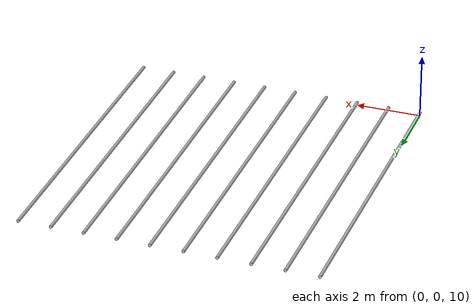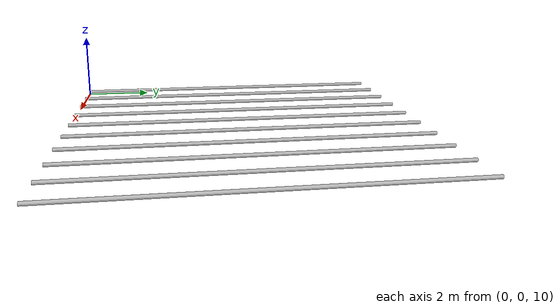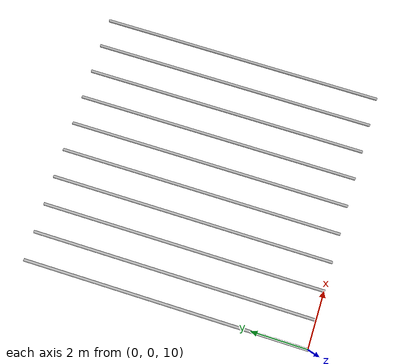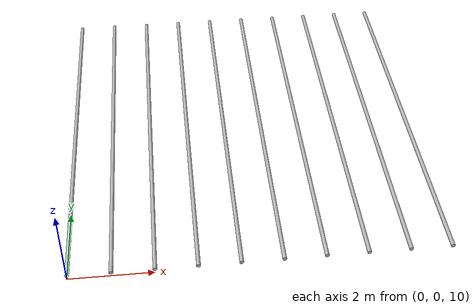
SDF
<?xml version="1.0" ?>
<sdf version="1.3">
    <world name="default">
        <gui>
            <camera name="user_camera">
                <pose>-60 0 5 0 0 0</pose>
            </camera>
        </gui>
        <scene>
            <ambient>0.5 0.5 0.5 1</ambient>
            <background>0.5 0.5 0.5 1</background>
            <shadows>false</shadows>
        </scene>
        <include>
            <uri>model://sun</uri>
        </include>
        <physics type="ode">
            <gravity>0.0 0.0 -9.81</gravity>
            <ode>
                <solver>
                    <type>quick</type>
                    <dt>0.001</dt>
                    <iters>100</iters>
                    <sor>1.0</sor>
                </solver>
                <constraints>
                    <cfm>0</cfm>
                    <erp>1.0</erp>
                    <contact_max_correcting_vel>0.0</contact_max_correcting_vel>
                    <contact_surface_layer>0.0</contact_surface_layer>
                </constraints>
            </ode>
        </physics>
        <model name="model_1_mass_1_damping_10000">
            <pose>0.0 0.0 10.1 1.57079633 0.0 0.0</pose>
            <link name="link_1">
                <pose>0.0 0.0 0.0 0.0 0.0 0.0</pose>
                <inertial>
                    <pose>0.0 0.0 -10.0 0.0 0.0 0.0</pose>
                    <inertia>
                        <ixx>0.0</ixx>
                        <ixy>0.0</ixy>
                        <ixz>0.0</ixz>
                        <iyy>0.0</iyy>
                        <iyz>0.0</iyz>
                        <izz>0.0</izz>
                    </inertia>
                    <mass>1.0</mass>
                </inertial>
                <velocity_decay>
                    <linear>0.0</linear>
                    <angular>0.0</angular>
                </velocity_decay>
                <visual name="visual_cylinder">
                    <pose>0.0 0.0 -5.0 0.0 0.0 0.0</pose>
                    <geometry>
                        <cylinder>
                            <radius>0.05</radius>
                            <length>10.0</length>
                        </cylinder>
                    </geometry>
                    <material>
                        <script>Gazebo/Green</script>
                    </material>
                </visual>
                <collision name="collision_cylinder">
                    <pose>0.0 0.0 -5.0 0.0 0.0 0.0</pose>
                    <max_contacts>250</max_contacts>
                    <geometry>
                        <cylinder>
                            <radius>0.05</radius>
                            <length>10.0</length>
                        </cylinder>
                    </geometry>
                </collision>
                <gravity>true</gravity>
                <self_collide>true</self_collide>
                <kinematic>false</kinematic>
            </link>
            <joint name="joint_0" type="revolute">
                <parent>world</parent>
                <child>link_1</child>
                <pose>0.0 0.0 0.0 0.0 0.0 0.0</pose>
                <axis>
                    <xyz>1.0 0.0 0.0</xyz>
                    <dynamics>
                        <damping>10000.0</damping>
                        <friction>0.0</friction>
                    </dynamics>
                </axis>
            </joint>
            <static>false</static>
        </model>
        <model name="model_2_mass_01_damping_10">
            <pose>1.0 0.0 10.1 1.57079633 0.0 0.0</pose>
            <link name="link_1">
                <pose>0.0 0.0 0.0 0.0 0.0 0.0</pose>
                <inertial>
                    <pose>0.0 0.0 -10.0 0.0 0.0 0.0</pose>
                    <inertia>
                        <ixx>0.0</ixx>
                        <ixy>0.0</ixy>
                        <ixz>0.0</ixz>
                        <iyy>0.0</iyy>
                        <iyz>0.0</iyz>
                        <izz>0.0</izz>
                    </inertia>
                    <mass>0.1</mass>
                </inertial>
                <velocity_decay>
                    <linear>0.0</linear>
                    <angular>0.0</angular>
                </velocity_decay>
                <visual name="visual_cylinder">
                    <pose>0.0 0.0 -5.0 0.0 0.0 0.0</pose>
                    <geometry>
                        <cylinder>
                            <radius>0.05</radius>
                            <length>10.0</length>
                        </cylinder>
                    </geometry>
                    <material>
                        <script>Gazebo/Green</script>
                    </material>
                </visual>
                <collision name="collision_cylinder">
                    <pose>0.0 0.0 -5.0 0.0 0.0 0.0</pose>
                    <max_contacts>250</max_contacts>
                    <geometry>
                        <cylinder>
                            <radius>0.05</radius>
                            <length>10.0</length>
                        </cylinder>
                    </geometry>
                </collision>
                <gravity>true</gravity>
                <self_collide>true</self_collide>
                <kinematic>false</kinematic>
            </link>
            <joint name="joint_0" type="revolute">
                <parent>world</parent>
                <child>link_1</child>
                <pose>0.0 0.0 0.0 0.0 0.0 0.0</pose>
                <axis>
                    <xyz>1.0 0.0 0.0</xyz>
                    <dynamics>
                        <damping>10.0</damping>
                        <friction>0.0</friction>
                    </dynamics>
                </axis>
            </joint>
            <static>false</static>
        </model>
        <model name="model_3_mass_1_damping_10">
            <pose>2.0 0.0 10.1 1.57079633 0.0 0.0</pose>
            <link name="link_1">
                <pose>0.0 0.0 0.0 0.0 0.0 0.0</pose>
                <inertial>
                    <pose>0.0 0.0 -10.0 0.0 0.0 0.0</pose>
                    <inertia>
                        <ixx>0.0</ixx>
                        <ixy>0.0</ixy>
                        <ixz>0.0</ixz>
                        <iyy>0.0</iyy>
                        <iyz>0.0</iyz>
                        <izz>0.0</izz>
                    </inertia>
                    <mass>1.0</mass>
                </inertial>
                <velocity_decay>
                    <linear>0.0</linear>
                    <angular>0.0</angular>
                </velocity_decay>
                <visual name="visual_cylinder">
                    <pose>0.0 0.0 -5.0 0.0 0.0 0.0</pose>
                    <geometry>
                        <cylinder>
                            <radius>0.05</radius>
                            <length>10.0</length>
                        </cylinder>
                    </geometry>
                    <material>
                        <script>Gazebo/Green</script>
                    </material>
                </visual>
                <collision name="collision_cylinder">
                    <pose>0.0 0.0 -5.0 0.0 0.0 0.0</pose>
                    <max_contacts>250</max_contacts>
                    <geometry>
                        <cylinder>
                            <radius>0.05</radius>
                            <length>10.0</length>
                        </cylinder>
                    </geometry>
                </collision>
                <gravity>true</gravity>
                <self_collide>true</self_collide>
                <kinematic>false</kinematic>
            </link>
            <joint name="joint_0" type="revolute">
                <parent>world</parent>
                <child>link_1</child>
                <pose>0.0 0.0 0.0 0.0 0.0 0.0</pose>
                <axis>
                    <xyz>1.0 0.0 0.0</xyz>
                    <dynamics>
                        <damping>10.0</damping>
                        <friction>0.0</friction>
                    </dynamics>
                </axis>
            </joint>
            <static>false</static>
        </model>
        <model name="model_4_mass_1_ixx_1_damping_10">
            <pose>3.0 0.0 10.1 1.57079633 0.0 0.0</pose>
            <link name="link_1">
                <pose>0.0 0.0 0.0 0.0 0.0 0.0</pose>
                <inertial>
                    <pose>0.0 0.0 -10.0 0.0 0.0 0.0</pose>
                    <inertia>
                        <ixx>1.0</ixx>
                        <ixy>0.0</ixy>
                        <ixz>0.0</ixz>
                        <iyy>0.0</iyy>
                        <iyz>0.0</iyz>
                        <izz>0.0</izz>
                    </inertia>
                    <mass>1.0</mass>
                </inertial>
                <velocity_decay>
                    <linear>0.0</linear>
                    <angular>0.0</angular>
                </velocity_decay>
                <visual name="visual_cylinder">
                    <pose>0.0 0.0 -5.0 0.0 0.0 0.0</pose>
                    <geometry>
                        <cylinder>
                            <radius>0.05</radius>
                            <length>10.0</length>
                        </cylinder>
                    </geometry>
                    <material>
                        <script>Gazebo/Green</script>
                    </material>
                </visual>
                <collision name="collision_cylinder">
                    <pose>0.0 0.0 -5.0 0.0 0.0 0.0</pose>
                    <max_contacts>250</max_contacts>
                    <geometry>
                        <cylinder>
                            <radius>0.05</radius>
                            <length>10.0</length>
                        </cylinder>
                    </geometry>
                </collision>
                <gravity>true</gravity>
                <self_collide>true</self_collide>
                <kinematic>false</kinematic>
            </link>
            <joint name="joint_0" type="revolute">
                <parent>world</parent>
                <child>link_1</child>
                <pose>0.0 0.0 0.0 0.0 0.0 0.0</pose>
                <axis>
                    <xyz>1.0 0.0 0.0</xyz>
                    <dynamics>
                        <damping>10.0</damping>
                        <friction>0.0</friction>
                    </dynamics>
                </axis>
            </joint>
            <static>false</static>
        </model>
        <model name="model_5_mass_1_damping_1">
            <pose>4.0 0.0 10.1 1.57079633 0.0 0.0</pose>
            <link name="link_1">
                <pose>0.0 0.0 0.0 0.0 0.0 0.0</pose>
                <inertial>
                    <pose>0.0 0.0 -10.0 0.0 0.0 0.0</pose>
                    <inertia>
                        <ixx>0.0</ixx>
                        <ixy>0.0</ixy>
                        <ixz>0.0</ixz>
                        <iyy>0.0</iyy>
                        <iyz>0.0</iyz>
                        <izz>0.0</izz>
                    </inertia>
                    <mass>1.0</mass>
                </inertial>
                <velocity_decay>
                    <linear>0.0</linear>
                    <angular>0.0</angular>
                </velocity_decay>
                <visual name="visual_cylinder">
                    <pose>0.0 0.0 -5.0 0.0 0.0 0.0</pose>
                    <geometry>
                        <cylinder>
                            <radius>0.05</radius>
                            <length>10.0</length>
                        </cylinder>
                    </geometry>
                    <material>
                        <script>Gazebo/Green</script>
                    </material>
                </visual>
                <collision name="collision_cylinder">
                    <pose>0.0 0.0 -5.0 0.0 0.0 0.0</pose>
                    <max_contacts>250</max_contacts>
                    <geometry>
                        <cylinder>
                            <radius>0.05</radius>
                            <length>10.0</length>
                        </cylinder>
                    </geometry>
                </collision>
                <gravity>true</gravity>
                <self_collide>true</self_collide>
                <kinematic>false</kinematic>
            </link>
            <joint name="joint_0" type="revolute">
                <parent>world</parent>
                <child>link_1</child>
                <pose>0.0 0.0 0.0 0.0 0.0 0.0</pose>
                <axis>
                    <xyz>1.0 0.0 0.0</xyz>
                    <dynamics>
                        <damping>1.0</damping>
                        <friction>0.0</friction>
                    </dynamics>
                </axis>
            </joint>
            <static>false</static>
        </model>
        <model name="model_6_mass_1_damping_10">
            <pose>5.0 0.0 10.1 1.57079633 0.0 0.0</pose>
            <link name="link_1">
                <pose>0.0 0.0 0.0 0.0 0.0 0.0</pose>
                <inertial>
                    <pose>0.0 0.0 -10.0 0.0 0.0 0.0</pose>
                    <inertia>
                        <ixx>0.0</ixx>
                        <ixy>0.0</ixy>
                        <ixz>0.0</ixz>
                        <iyy>0.0</iyy>
                        <iyz>0.0</iyz>
                        <izz>0.0</izz>
                    </inertia>
                    <mass>1.0</mass>
                </inertial>
                <velocity_decay>
                    <linear>0.0</linear>
                    <angular>0.0</angular>
                </velocity_decay>
                <visual name="visual_cylinder">
                    <pose>0.0 0.0 -5.0 0.0 0.0 0.0</pose>
                    <geometry>
                        <cylinder>
                            <radius>0.05</radius>
                            <length>10.0</length>
                        </cylinder>
                    </geometry>
                    <material>
                        <script>Gazebo/Green</script>
                    </material>
                </visual>
                <collision name="collision_cylinder">
                    <pose>0.0 0.0 -5.0 0.0 0.0 0.0</pose>
                    <max_contacts>250</max_contacts>
                    <geometry>
                        <cylinder>
                            <radius>0.05</radius>
                            <length>10.0</length>
                        </cylinder>
                    </geometry>
                </collision>
                <gravity>true</gravity>
                <self_collide>true</self_collide>
                <kinematic>false</kinematic>
            </link>
            <joint name="joint_0" type="revolute">
                <parent>world</parent>
                <child>link_1</child>
                <pose>0.0 0.0 0.0 0.0 0.0 0.0</pose>
                <axis>
                    <xyz>1.0 0.0 0.0</xyz>
                    <dynamics>
                        <damping>10.0</damping>
                        <friction>0.0</friction>
                    </dynamics>
                </axis>
            </joint>
            <static>false</static>
        </model>
        <model name="model_7_mass_1_damping_100">
            <pose>6.0 0.0 10.1 1.57079633 0.0 0.0</pose>
            <link name="link_1">
                <pose>0.0 0.0 0.0 0.0 0.0 0.0</pose>
                <inertial>
                    <pose>0.0 0.0 -10.0 0.0 0.0 0.0</pose>
                    <inertia>
                        <ixx>0.0</ixx>
                        <ixy>0.0</ixy>
                        <ixz>0.0</ixz>
                        <iyy>0.0</iyy>
                        <iyz>0.0</iyz>
                        <izz>0.0</izz>
                    </inertia>
                    <mass>1.0</mass>
                </inertial>
                <velocity_decay>
                    <linear>0.0</linear>
                    <angular>0.0</angular>
                </velocity_decay>
                <visual name="visual_cylinder">
                    <pose>0.0 0.0 -5.0 0.0 0.0 0.0</pose>
                    <geometry>
                        <cylinder>
                            <radius>0.05</radius>
                            <length>10.0</length>
                        </cylinder>
                    </geometry>
                    <material>
                        <script>Gazebo/Green</script>
                    </material>
                </visual>
                <collision name="collision_cylinder">
                    <pose>0.0 0.0 -5.0 0.0 0.0 0.0</pose>
                    <max_contacts>250</max_contacts>
                    <geometry>
                        <cylinder>
                            <radius>0.05</radius>
                            <length>10.0</length>
                        </cylinder>
                    </geometry>
                </collision>
                <gravity>true</gravity>
                <self_collide>true</self_collide>
                <kinematic>false</kinematic>
            </link>
            <joint name="joint_0" type="revolute">
                <parent>world</parent>
                <child>link_1</child>
                <pose>0.0 0.0 0.0 0.0 0.0 0.0</pose>
                <axis>
                    <xyz>1.0 0.0 0.0</xyz>
                    <dynamics>
                        <damping>100.0</damping>
                        <friction>0.0</friction>
                    </dynamics>
                </axis>
            </joint>
            <static>false</static>
        </model>
        <model name="model_8_mass_1_damping_1000">
            <pose>7.0 0.0 10.1 1.57079633 0.0 0.0</pose>
            <link name="link_1">
                <pose>0.0 0.0 0.0 0.0 0.0 0.0</pose>
                <inertial>
                    <pose>0.0 0.0 -10.0 0.0 0.0 0.0</pose>
                    <inertia>
                        <ixx>0.0</ixx>
                        <ixy>0.0</ixy>
                        <ixz>0.0</ixz>
                        <iyy>0.0</iyy>
                        <iyz>0.0</iyz>
                        <izz>0.0</izz>
                    </inertia>
                    <mass>1.0</mass>
                </inertial>
                <velocity_decay>
                    <linear>0.0</linear>
                    <angular>0.0</angular>
                </velocity_decay>
                <visual name="visual_cylinder">
                    <pose>0.0 0.0 -5.0 0.0 0.0 0.0</pose>
                    <geometry>
                        <cylinder>
                            <radius>0.05</radius>
                            <length>10.0</length>
                        </cylinder>
                    </geometry>
                    <material>
                        <script>Gazebo/Green</script>
                    </material>
                </visual>
                <collision name="collision_cylinder">
                    <pose>0.0 0.0 -5.0 0.0 0.0 0.0</pose>
                    <max_contacts>250</max_contacts>
                    <geometry>
                        <cylinder>
                            <radius>0.05</radius>
                            <length>10.0</length>
                        </cylinder>
                    </geometry>
                </collision>
                <gravity>true</gravity>
                <self_collide>true</self_collide>
                <kinematic>false</kinematic>
            </link>
            <joint name="joint_0" type="revolute">
                <parent>world</parent>
                <child>link_1</child>
                <pose>0.0 0.0 0.0 0.0 0.0 0.0</pose>
                <axis>
                    <xyz>1.0 0.0 0.0</xyz>
                    <dynamics>
                        <damping>1000.0</damping>
                        <friction>0.0</friction>
                    </dynamics>
                </axis>
            </joint>
            <static>false</static>
        </model>
        <model name="model_9_mass_1_damping_0">
            <pose>8.0 0.0 10.1 1.57079633 0.0 0.0</pose>
            <link name="link_1">
                <pose>0.0 0.0 0.0 0.0 0.0 0.0</pose>
                <inertial>
                    <pose>0.0 0.0 -10.0 0.0 0.0 0.0</pose>
                    <inertia>
                        <ixx>0.0</ixx>
                        <ixy>0.0</ixy>
                        <ixz>0.0</ixz>
                        <iyy>0.0</iyy>
                        <iyz>0.0</iyz>
                        <izz>0.0</izz>
                    </inertia>
                    <mass>1.0</mass>
                </inertial>
                <velocity_decay>
                    <linear>0.0</linear>
                    <angular>0.0</angular>
                </velocity_decay>
                <visual name="visual_cylinder">
                    <pose>0.0 0.0 -5.0 0.0 0.0 0.0</pose>
                    <geometry>
                        <cylinder>
                            <radius>0.05</radius>
                            <length>10.0</length>
                        </cylinder>
                    </geometry>
                    <material>
                        <script>Gazebo/Green</script>
                    </material>
                </visual>
                <collision name="collision_cylinder">
                    <pose>0.0 0.0 -5.0 0.0 0.0 0.0</pose>
                    <max_contacts>250</max_contacts>
                    <geometry>
                        <cylinder>
                            <radius>0.05</radius>
                            <length>10.0</length>
                        </cylinder>
                    </geometry>
                </collision>
                <gravity>true</gravity>
                <self_collide>true</self_collide>
                <kinematic>false</kinematic>
            </link>
            <joint name="joint_0" type="revolute">
                <parent>world</parent>
                <child>link_1</child>
                <pose>0.0 0.0 0.0 0.0 0.0 0.0</pose>
                <axis>
                    <xyz>1.0 0.0 0.0</xyz>
                    <dynamics>
                        <damping>0.0</damping>
                        <friction>0.0</friction>
                    </dynamics>
                </axis>
            </joint>
            <static>false</static>
        </model>
        <model name="model_10_mass_10_damping_0">
            <pose>9.0 0.0 10.1 1.57079633 0.0 0.0</pose>
            <link name="link_1">
                <pose>0.0 0.0 0.0 0.0 0.0 0.0</pose>
                <inertial>
                    <pose>0.0 0.0 -10.0 0.0 0.0 0.0</pose>
                    <inertia>
                        <ixx>0.0</ixx>
                        <ixy>0.0</ixy>
                        <ixz>0.0</ixz>
                        <iyy>0.0</iyy>
                        <iyz>0.0</iyz>
                        <izz>0.0</izz>
                    </inertia>
                    <mass>10.0</mass>
                </inertial>
                <velocity_decay>
                    <linear>0.0</linear>
                    <angular>0.0</angular>
                </velocity_decay>
                <visual name="visual_cylinder">
                    <pose>0.0 0.0 -5.0 0.0 0.0 0.0</pose>
                    <geometry>
                        <cylinder>
                            <radius>0.05</radius>
                            <length>10.0</length>
                        </cylinder>
                    </geometry>
                    <material>
                        <script>Gazebo/Green</script>
                    </material>
                </visual>
                <collision name="collision_cylinder">
                    <pose>0.0 0.0 -5.0 0.0 0.0 0.0</pose>
                    <max_contacts>250</max_contacts>
                    <geometry>
                        <cylinder>
                            <radius>0.05</radius>
                            <length>10.0</length>
                        </cylinder>
                    </geometry>
                </collision>
                <gravity>true</gravity>
                <self_collide>true</self_collide>
                <kinematic>false</kinematic>
            </link>
            <joint name="joint_0" type="revolute">
                <parent>world</parent>
                <child>link_1</child>
                <pose>0.0 0.0 0.0 0.0 0.0 0.0</pose>
                <axis>
                    <xyz>1.0 0.0 0.0</xyz>
                    <dynamics>
                        <damping>0.0</damping>
                        <friction>0.0</friction>
                    </dynamics>
                </axis>
            </joint>
            <static>false</static>
        </model>
    </world>
</sdf>
